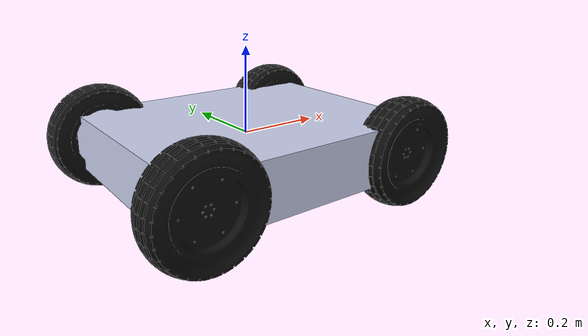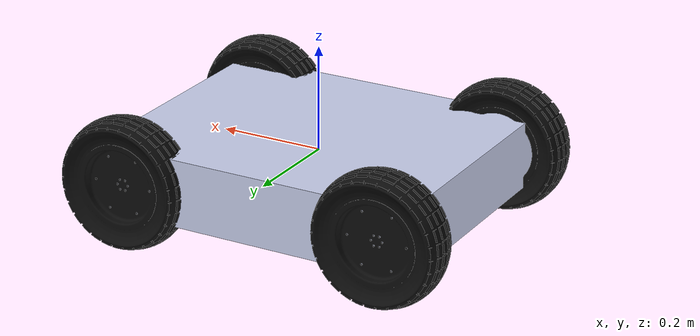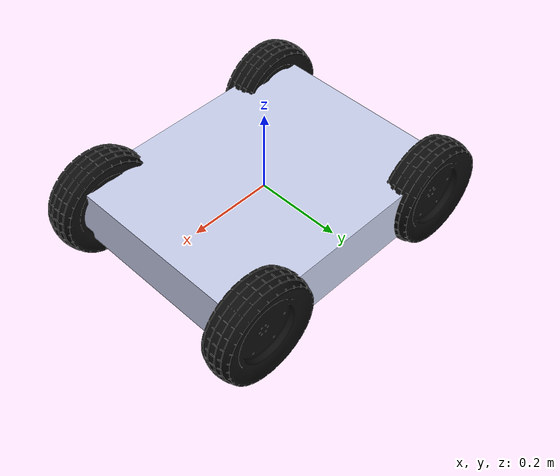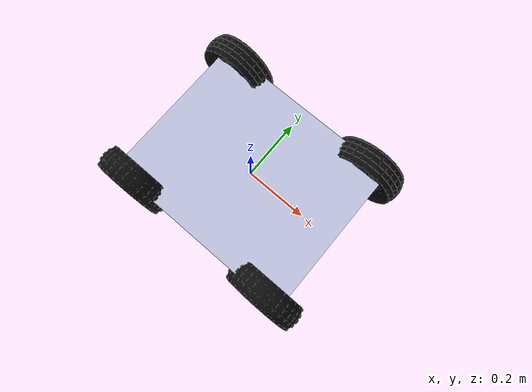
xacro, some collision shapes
<?xml version="1.0"?>
<robot xmlns:xacro="http://www.ros.org/wiki/xacro" name="curt_mini">

  <!-- path to package -->
  <xacro:arg name="path" default="$(find curt_mini_description)" />
  <xacro:arg name="use_sim_time" default="False" />
  <xacro:arg name="gazebo_controllers" default="$(arg path)/config/ros2_control_simulation.yaml" />
  <xacro:arg name="simulation" default="False" />
  <!-- Import ros2_control -->
  <xacro:include filename="$(find curt_mini_description)/models/curt_mini/ros2_control.xacro" />

  <!-- Include properties -->
  <xacro:include filename="$(find curt_mini_description)/models/curt_mini/properties.xacro" />

  <xacro:include filename="$(find curt_mini_description)/models/curt_mini/material.xacro" />

  <!-- Include sensors -->
  <xacro:include filename="$(find curt_mini_description)/models/curt_mini/sensors.xacro" />

  <link name="base_link" />

  <!-- Chassis link at same position as base_link, as root is not allowed to have inertial
  information -->
  <link name="chassis">
    <inertial>
      <origin xyz="0.011876 0.003999 0.048645" rpy="0 0 0" />
      <mass value="9.0318" />
      <inertia ixx="0.04558" ixy="-2.4654E-05" ixz="0.0014869" iyy="0.059986" iyz="2.4934E-05"
        izz="0.09132" />
    </inertial>
    <visual>
      <origin xyz="0 0 0" rpy="0 0 0" />
      <geometry>
        <mesh filename="package://curt_mini_description/models/curt_mini/meshes/base_link.STL" />
      </geometry>
      <material name="">
        <color rgba="0.79216 0.81961 0.93333 1" />
      </material>
    </visual>
    <!-- Stacked boxes cover the chassis mesh without filling the space beside its upper body. -->
    <collision name="chassis_lower_collision">
      <origin xyz="0 0 -0.025" rpy="0 0 0" />
      <geometry>
        <box size="0.63 0.51 0.13" />
      </geometry>
    </collision>
    <collision name="chassis_middle_collision">
      <origin xyz="0 0 0.10" rpy="0 0 0" />
      <geometry>
        <box size="0.59 0.38 0.12" />
      </geometry>
    </collision>
    <collision name="chassis_upper_collision">
      <origin xyz="0 0 0.18" rpy="0 0 0" />
      <geometry>
        <box size="0.60 0.30 0.05" />
      </geometry>
    </collision>
  </link>
  <joint name="base_to_chassis" type="fixed">
    <parent link="base_link" />
    <child link="chassis" />
  </joint>

  <link name="front_right_wheel">
    <inertial>
      <origin xyz="-2.8086E-05 0.013016 2.8089E-05" rpy="0 0 0" />
      <mass value="0.61321" />
      <inertia ixx="0.0031957" ixy="-6.9366E-08" ixz="-8.7949E-07" iyy="0.0057902" iyz="6.9371E-08"
        izz="0.0031957" />
    </inertial>
    <visual>
      <origin xyz="0 0 0" rpy="0 0 0" />
      <geometry>
        <mesh filename="package://curt_mini_description/models/curt_mini/meshes/wheel4_link.STL" />
      </geometry>
      <material name="curt_mini_dark_gray" />
    </visual>
    <collision>
      <origin xyz="0 0.01 0" rpy="${PI / 2} 0 0" />
      <geometry>
        <cylinder radius="${wheel_radius}" length="${wheel_width}" />
      </geometry>
    </collision>
  </link>
  <joint name="front_right_motor" type="continuous">
    <origin xyz="0.25995 -0.258 -0.030204" rpy="0 0 0" />
    <parent link="base_link" />
    <child link="front_right_wheel" />
    <axis xyz="0 1 0" />
    <dynamics damping="1.0" />
    <limit effort="${max_effort}" velocity="${max_wheel_velocity}" />
  </joint>

  <link name="front_left_wheel">
    <inertial>
      <origin xyz="2.8086E-05 -0.013016 2.8089E-05" rpy="0 0 0" />
      <mass value="0.61321" />
      <inertia ixx="0.0031957" ixy="-6.9366E-08" ixz="8.7949E-07" iyy="0.0057902" iyz="-6.9371E-08"
        izz="0.0031957" />
    </inertial>
    <visual>
      <origin xyz="0 0 0" rpy="0 0 0" />
      <geometry>
        <mesh filename="package://curt_mini_description/models/curt_mini/meshes/wheel1_link.STL" />
      </geometry>
      <material name="curt_mini_dark_gray" />
    </visual>
    <collision>
      <origin xyz="0 -0.01 0" rpy="${PI / 2} 0 0" />
      <geometry>
        <cylinder radius="${wheel_radius}" length="${wheel_width}" />
      </geometry>
    </collision>
  </link>
  <joint name="front_left_motor" type="continuous">
    <origin xyz="0.25995 0.258 -0.030204" rpy="0 0 0" />
    <parent link="base_link" />
    <child link="front_left_wheel" />
    <axis xyz="0 1 0" />
    <dynamics damping="1.0" />
    <limit effort="${max_effort}" velocity="${max_wheel_velocity}" />
  </joint>

  <link name="back_right_wheel">
    <inertial>
      <origin xyz="-2.8086E-05 0.013016 2.8089E-05" rpy="0 0 0" />
      <mass value="0.61321" />
      <inertia ixx="0.0031957" ixy="-6.9366E-08" ixz="-8.7949E-07" iyy="0.0057902" iyz="6.9371E-08"
        izz="0.0031957" />
    </inertial>
    <visual>
      <origin xyz="0 0 0" rpy="0 0 0" />
      <geometry>
        <mesh filename="package://curt_mini_description/models/curt_mini/meshes/wheel3_link.STL" />
      </geometry>
      <material name="curt_mini_dark_gray" />
    </visual>
    <collision>
      <origin xyz="0 0.01 0" rpy="${PI / 2} 0 0" />
      <geometry>
        <cylinder radius="${wheel_radius}" length="${wheel_width}" />
      </geometry>
    </collision>
  </link>
  <joint name="back_right_motor" type="continuous">
    <origin xyz="-0.26 -0.258 -0.022755" rpy="0 0 0" />
    <parent link="base_link" />
    <child link="back_right_wheel" />
    <axis xyz="0 1 0" />
    <dynamics damping="1.0" />
    <limit effort="${max_effort}" velocity="${max_wheel_velocity}" />
  </joint>

  <link name="back_left_wheel">
    <inertial>
      <origin xyz="2.8086E-05 -0.013016 2.8089E-05" rpy="0 0 0" />
      <mass value="0.61321" />
      <inertia ixx="0.0031957" ixy="-6.9366E-08" ixz="8.7949E-07" iyy="0.0057902" iyz="-6.9371E-08"
        izz="0.0031957" />
    </inertial>
    <visual>
      <origin xyz="0 0 0" rpy="0 0 0" />
      <geometry>
        <mesh filename="package://curt_mini_description/models/curt_mini/meshes/wheel2_link.STL" />
      </geometry>
      <material name="curt_mini_dark_gray" />
    </visual>
    <collision>
      <origin xyz="0 -0.01 0" rpy="${PI / 2} 0 0" />
      <geometry>
        <cylinder radius="${wheel_radius}" length="${wheel_width}" />
      </geometry>
    </collision>
  </link>
  <joint name="back_left_motor" type="continuous">
    <origin xyz="-0.26 0.258 -0.022755" rpy="0 0 0" />
    <parent link="base_link" />
    <child link="back_left_wheel" />
    <axis xyz="0 1 0" />
    <dynamics damping="1.0" />
    <limit effort="${max_effort}" velocity="${max_wheel_velocity}" />
  </joint>

  <!-- Import gazebo infos -->
  <xacro:if value="$(arg simulation)">
    <xacro:include filename="$(find curt_mini_description)/models/curt_mini/gazebo.xacro" />
  </xacro:if>

</robot>

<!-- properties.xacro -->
<robot xmlns:xacro="http://www.ros.org/wiki/xacro">

    <!-- Constants for robot -->
    <xacro:property name="PI" value="3.1415926535897931" />

    <!-- robot limits -->
    <xacro:property name="max_effort" value="50.0" />
    <xacro:property name="max_velocity" value="5.0" />
    <xacro:property name="wheel_radius" value="0.13" />
    <xacro:property name="wheel_width" value="0.08" />

    <!-- Diff wheel ode params -->
    <xacro:macro name="wheel_ode_params">
        <mu1 value="200" />
        <mu2 value="0.3" />
        <kp value="10000000.0" />
        <kd value="1" />
        <fdir1 value="1 0 0" />
    </xacro:macro>

    <!-- transmissions -->
    <xacro:macro name="wheel_transmissions" params="prefix">
        <transmission name="${prefix}_wheel_trans">
            <type>transmission_interface/SimpleTransmission</type>
            <joint name="${prefix}">
              <hardwareInterface>hardware_interface/VelocityJointInterface</hardwareInterface>
            </joint>
            <actuator name="${prefix}_wheel_actuator">
              <mechanicalReduction>1</mechanicalReduction>
            </actuator>
          </transmission>
    </xacro:macro>

</robot>

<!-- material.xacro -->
<robot xmlns:xacro="http://www.ros.org/wiki/xacro">
  <material name="curt_mini_dark_gray">
    <color rgba="0.05 0.05 0.05 1" />
  </material>
  <material name="curt_mini_green">
    <color rgba="0.1 0.6 0.2 1" />
  </material>
  <material name="curt_mini_blue">
    <color rgba="0.1 0.3 0.8 1" />
  </material>
  <material name="curt_mini_red">
    <color rgba="0.8 0.1 0.1 1" />
  </material>
</robot>

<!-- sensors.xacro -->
<robot xmlns:xacro="http://www.ros.org/wiki/xacro">

  <!-- Some properties -->
  <xacro:include filename="$(find curt_mini_description)/models/curt_mini/properties.xacro" />

  <!-- LPResearch CANAL3 IMU -->
  <joint name="base_link_to_imu" type="fixed">
    <parent link="base_link" />
    <child link="imu_link" />
    <origin xyz="0.062 0.0 0.015" rpy="0.0 0.0 ${pi/2}"/>
  </joint>
  <link name="imu_link" />

</robot>
